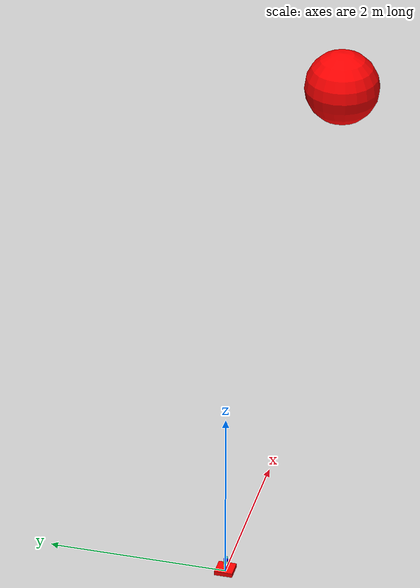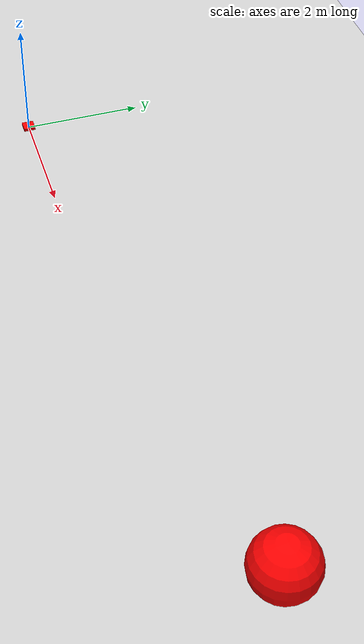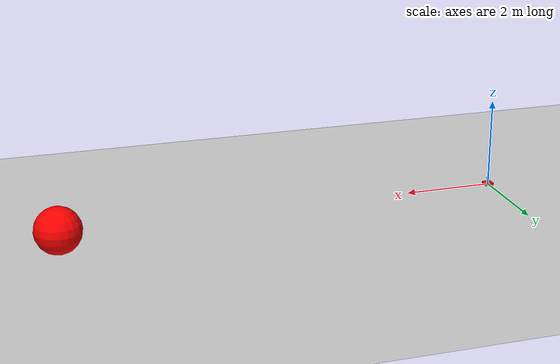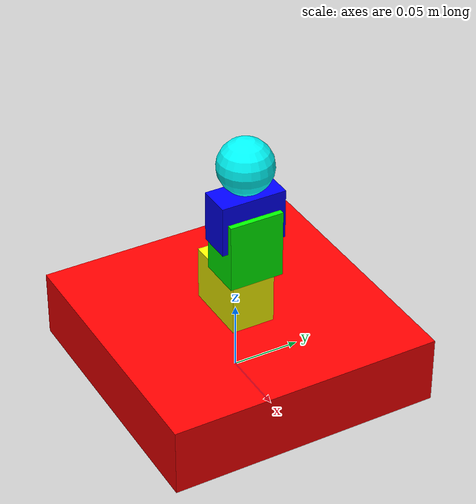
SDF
<?xml version="1.0"?>
<sdf version="1.4">
  <world name="default">

    <!-- Ground Plane -->
    <include>
      <uri>model://ground_plane</uri>
    </include>

    <include>
      <uri>model://sun</uri>
    </include>
   <model name ='sphere'>
      <pose>10 1 .5 0 0 0</pose>
      <link name='link'>
         <collision name='collision'>
            <geometry>
               <sphere><radius>.5</radius></sphere>
            </geometry>
         </collision>

         <visual name = 'visual'>
            <geometry>
               <sphere><radius>.5</radius></sphere>
            </geometry>
            <material>
               <ambient>1 0 0 1</ambient>
               <diffuse>1 0 0 1</diffuse>
               <specular>0.1 0.1 0.1 1</specular>
               <emissive>0 0 0 0</emissive>
            </material>
         </visual>
      </link>
   </model>

   <model name ='PanTiltCam'>
<static>false</static>
      <pose>0 0 0 0 0 0</pose>
      <link name ='base'>
         <pose>0 0 .025 0 0 0</pose>
         <collision name='collision'>
            <geometry>
               <box><size>.2 .2 .05</size></box>
            </geometry>
         </collision>
         <visual name = 'visual'>
            <geometry>
               <box><size>.2 .2 .05</size></box>
            </geometry>
            <material>
               <ambient>1 0 0 1</ambient>
               <diffuse>1 0 0 1</diffuse>
               <specular>0.1 0.1 0.1 1</specular>
               <emissive>0 0 0 0</emissive>
            </material>
         </visual>
      </link>
      <!-- pan servo -->
      <link name ='panLink'>
         <pose>0 0 .07 0 0 0</pose>
         <collision name ='collision'>
            <geometry>
               <box>
                  <size>.050 .032 .040</size>
               </box>
            </geometry>
         </collision>
         <visual name ='visual'>
            <geometry>
               <box>
                  <size>.050 .032 .040</size>
               </box>
            </geometry>
            <material>
               <ambient>1 1 0 1</ambient>
               <diffuse>1 1 0 1</diffuse>
               <specular>0.1 0.1 0.1 1</specular>
               <emissive>0 0 0 0</emissive>
            </material>
         </visual>
      </link>
      <link name ='tiltLink'>
         <pose>.0135 0 .115 0 0 0</pose>
         <collision name ='collision'>
            <geometry>
               <box>
                  <size>.032 .040 .050</size>
               </box>
            </geometry>
         </collision>
         <visual name ='visual'>
            <geometry>
               <box>
                  <size>.032 .040 .050</size>
               </box>
            </geometry>
            <material>
               <ambient>0 1 0 1</ambient>
               <diffuse>0 1 0 1</diffuse>
               <specular>0.1 0.1 0.1 1</specular>
               <emissive>0 0 0 0</emissive>
            </material>
         </visual>
      </link>
      <link name ='armLink'>
         <pose>.0135 0 .1355 0 0 0</pose>
         <collision name ='collision'>
            <pose>0 0 .015 0 0 0</pose>
            <geometry>
               <box>
                  <size>.024 .048 .007</size>
               </box>
            </geometry>
         </collision>
         <visual name ='visual'>
            <geometry>
               <box>
                  <size>.024 .048 .037</size>
               </box>
            </geometry>
            <material>
               <ambient>0 0 1 1</ambient>
               <diffuse>0 0 1 1</diffuse>
               <specular>0.1 0.1 0.1 1</specular>
               <emissive>0 0 0 0</emissive>
            </material>
         </visual>
      </link>
      <link name='camLink'>
         <pose>.0135 0 .174 0 0 0</pose>
         <collision name ='collision'>
            <geometry>
               <sphere><radius>.02</radius></sphere>
            </geometry>
         </collision>
         <visual name ='visual'>
            <geometry>
               <sphere><radius>.02</radius></sphere>
            </geometry>
            <material>
               <ambient>0 1 1 1</ambient>
               <diffuse>0 1 1 1</diffuse>
               <specular>0.1 0.1 0.1 1</specular>
               <emissive>0 0 0 0</emissive>
            </material>
         </visual>
         <sensor name='cam_sensor1' type='camera'>
             <pose>.021 0 0 0 0 0</pose>
             <always_on>true</always_on>
             <update_rate>10</update_rate>
             <visualize>true</visualize>
             <camera>
                <horizontal_fov>1.57</horizontal_fov>
                <image>
                   <width>160</width>
                   <height>120</height>
                   <format>R8G8B8</format>
                </image>
                <clip>
                   <near>0.5</near>
                   <far>50</far>
                </clip>
             </camera>
         </sensor>
      </link>

      <!-- Joints -->
      <joint type="revolute" name="basejoint">
         <child>panLink</child>
         <parent>base</parent>
         <axis>
            <xyz>0 0 0</xyz>
            <limit>
               <upper>0</upper>
               <lower>0</lower>
            </limit>
         </axis>
      </joint>

      <joint type="revolute" name="pan">
         <child>tiltLink</child>
         <parent>panLink</parent>
         <axis><xyz>0 0 1</xyz></axis>
      </joint>

      <joint type="revolute" name="tilt">
         <pose>0 0 -.007 0 0 0</pose>
         <child>armLink</child>
         <parent>tiltLink</parent>
         <axis><xyz>0 1 0</xyz></axis>
      </joint>

      <joint type="revolute" name="camjoint">
         <child>camLink</child>
         <parent>armLink</parent>
         <axis>
            <xyz>0 0 0</xyz>
            <limit>
               <upper>0</upper>
               <lower>0</lower>
            </limit>
         </axis>
      </joint>

      <!-- plugin -->
      <plugin filename="build/libpt_drive.so" name="pt_drive_plugin">
         <pan>pan</pan>
         <tilt>tilt</tilt>
      </plugin>
   </model>

<!-- Light Source -->
        <light type="directional" name="sun">
            <pose>0 0 10 0 0 0</pose>
            <diffuse>1.0 1.0 1.0 1</diffuse>
            <specular>0 0 0 1</specular>
            <attenuation>
                <range>20</range>
                <linear>0.01</linear>
                <constant>0.8</constant>
                <quadratic>0.0</quadratic>
            </attenuation>
            <direction>0.0 0.2 -8.0</direction>
            <cast_shadows>true</cast_shadows>
        </light>

  </world>
</sdf>
